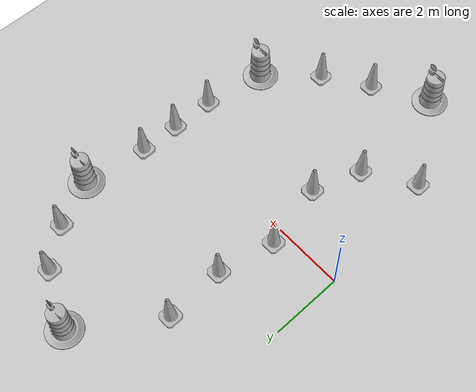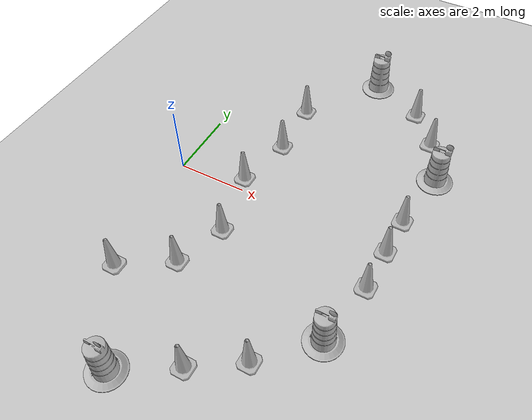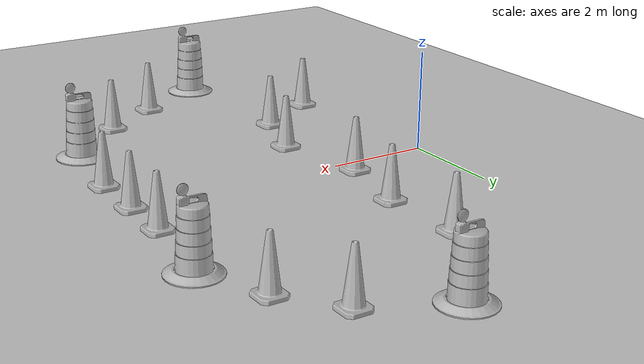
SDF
<sdf version="1.7">
 <world name="default">
  <light name="sun" type="directional">
   <pose>0 0 10 0 -0 0</pose>
   <diffuse>0.8 0.8 0.8 1</diffuse>
   <specular>0.2 0.2 0.2 1</specular>
   <attenuation>
    <range>1000</range>
    <constant>0.9</constant>
    <linear>0.01</linear>
    <quadratic>0.001</quadratic>
   </attenuation>
   <direction>-0.5 0.1 -0.9</direction>
   <spot><inner_angle>0</inner_angle><outer_angle>0</outer_angle><falloff>0</falloff></spot>
  </light>
  <model name="ground_plane">
   <static>1</static>
   <link name="link">
    <collision name="collision">
     <geometry><plane><normal>0 0 1</normal><size>100 100</size></plane></geometry>
     <surface>
      <contact><collide_bitmask>65535</collide_bitmask></contact>
      <friction><ode><mu>100</mu><mu2>50</mu2></ode></friction>
     </surface>
    </collision>
    <visual name="visual">
     <cast_shadows>0</cast_shadows>
     <geometry><plane><normal>0 0 1</normal><size>100 100</size></plane></geometry>
     <material>
      <script><uri>file://media/materials/scripts/gazebo.material</uri><name>Gazebo/Grey</name></script>
     </material>
    </visual>
   </link>
  </model>
  <gravity>0 0 -9.8</gravity>
  <magnetic_field>6e-06 2.3e-05 -4.2e-05</magnetic_field>
  <atmosphere type="adiabatic"/>
  <physics type="ode">
   <max_step_size>0.001</max_step_size>
   <real_time_factor>1</real_time_factor>
   <real_time_update_rate>1000</real_time_update_rate>
  </physics>
  <scene><ambient>0.4 0.4 0.4 1</ambient><background>0.7 0.7 0.7 1</background><shadows>1</shadows></scene>
  <audio><device>default</device></audio>
  <spherical_coordinates>
   <surface_model>EARTH_WGS84</surface_model>
   <latitude_deg>0</latitude_deg>
   <longitude_deg>0</longitude_deg>
   <elevation>0</elevation>
   <heading_deg>0</heading_deg>
  </spherical_coordinates>
  <model name="Construction Barrel">
   <link name="link">
    <inertial>
     <pose>0 0 0.4 0 -0 0</pose>
     <mass>500</mass>
     <inertia><ixx>51.2096</ixx><iyy>51.2096</iyy><izz>25</izz><ixy>0</ixy><ixz>0</ixz><iyz>0</iyz></inertia>
    </inertial>
    <collision name="collision">
     <geometry><mesh><uri>model://construction_barrel/meshes/construction_barrel.dae</uri></mesh></geometry>
    </collision>
    <visual name="visual">
     <geometry><mesh><uri>model://construction_barrel/meshes/construction_barrel.dae</uri></mesh></geometry>
    </visual>
   </link>
   <pose>3.65618 5.83042 -0 1e-06 -1e-06 -2.7e-05</pose>
  </model>
  <model name="Construction Barrel_0">
   <link name="link">
    <inertial>
     <pose>0 0 0.4 0 -0 0</pose>
     <mass>500</mass>
     <inertia><ixx>51.2096</ixx><iyy>51.2096</iyy><izz>25</izz><ixy>0</ixy><ixz>0</ixz><iyz>0</iyz></inertia>
    </inertial>
    <collision name="collision">
     <geometry><mesh><uri>model://construction_barrel/meshes/construction_barrel.dae</uri></mesh></geometry>
    </collision>
    <visual name="visual">
     <geometry><mesh><uri>model://construction_barrel/meshes/construction_barrel.dae</uri></mesh></geometry>
    </visual>
   </link>
   <pose>6.62296 2.84429 -0 1e-06 -1e-06 -2.6e-05</pose>
  </model>
  <model name="Construction Barrel_1">
   <link name="link">
    <inertial>
     <pose>0 0 0.4 0 -0 0</pose>
     <mass>500</mass>
     <inertia><ixx>51.2096</ixx><iyy>51.2096</iyy><izz>25</izz><ixy>0</ixy><ixz>0</ixz><iyz>0</iyz></inertia>
    </inertial>
    <collision name="collision">
     <geometry><mesh><uri>model://construction_barrel/meshes/construction_barrel.dae</uri></mesh></geometry>
    </collision>
    <visual name="visual">
     <geometry><mesh><uri>model://construction_barrel/meshes/construction_barrel.dae</uri></mesh></geometry>
    </visual>
   </link>
   <pose>2.04222 -5.9456 -0 1e-06 -1e-06 -2.5e-05</pose>
  </model>
  <model name="Construction Cone">
   <link name="link">
    <collision name="collision">
     <geometry>
      <mesh><scale>10 10 10</scale><uri>model://construction_cone/meshes/construction_cone.dae</uri></mesh>
     </geometry>
    </collision>
    <visual name="visual">
     <geometry>
      <mesh><scale>10 10 10</scale><uri>model://construction_cone/meshes/construction_cone.dae</uri></mesh>
     </geometry>
    </visual>
    <inertial>
     <inertia><ixx>1</ixx><ixy>0</ixy><ixz>0</ixz><iyy>1</iyy><iyz>0</iyz><izz>1</izz></inertia>
     <mass>1</mass>
    </inertial>
   </link>
   <pose>6.35152 1.03871 -0 0 -1e-06 0</pose>
  </model>
  <model name="Construction Barrel_2">
   <link name="link">
    <inertial>
     <pose>0 0 0.4 0 -0 0</pose>
     <mass>500</mass>
     <inertia><ixx>51.2096</ixx><iyy>51.2096</iyy><izz>25</izz><ixy>0</ixy><ixz>0</ixz><iyz>0</iyz></inertia>
    </inertial>
    <collision name="collision">
     <geometry><mesh><uri>model://construction_barrel/meshes/construction_barrel.dae</uri></mesh></geometry>
    </collision>
    <visual name="visual">
     <geometry><mesh><uri>model://construction_barrel/meshes/construction_barrel.dae</uri></mesh></geometry>
    </visual>
   </link>
   <pose>5.99773 -3.03415 -0 1e-06 -1e-06 -2.2e-05</pose>
  </model>
  <model name="Construction Cone_0">
   <link name="link">
    <collision name="collision">
     <geometry>
      <mesh><scale>10 10 10</scale><uri>model://construction_cone/meshes/construction_cone.dae</uri></mesh>
     </geometry>
    </collision>
    <visual name="visual">
     <geometry>
      <mesh><scale>10 10 10</scale><uri>model://construction_cone/meshes/construction_cone.dae</uri></mesh>
     </geometry>
    </visual>
    <inertial>
     <inertia><ixx>1</ixx><ixy>0</ixy><ixz>0</ixz><iyy>1</iyy><iyz>0</iyz><izz>1</izz></inertia>
     <mass>1</mass>
    </inertial>
   </link>
   <pose>6.32528 -0.080982 -0 0 -1e-06 0</pose>
  </model>
  <model name="Construction Cone_1">
   <link name="link">
    <collision name="collision">
     <geometry>
      <mesh><scale>10 10 10</scale><uri>model://construction_cone/meshes/construction_cone.dae</uri></mesh>
     </geometry>
    </collision>
    <visual name="visual">
     <geometry>
      <mesh><scale>10 10 10</scale><uri>model://construction_cone/meshes/construction_cone.dae</uri></mesh>
     </geometry>
    </visual>
    <inertial>
     <inertia><ixx>1</ixx><ixy>0</ixy><ixz>0</ixz><iyy>1</iyy><iyz>0</iyz><izz>1</izz></inertia>
     <mass>1</mass>
    </inertial>
   </link>
   <pose>6.30311 -1.2916 -0 0 -1e-06 0</pose>
  </model>
  <model name="Construction Cone_2">
   <link name="link">
    <collision name="collision">
     <geometry>
      <mesh><scale>10 10 10</scale><uri>model://construction_cone/meshes/construction_cone.dae</uri></mesh>
     </geometry>
    </collision>
    <visual name="visual">
     <geometry>
      <mesh><scale>10 10 10</scale><uri>model://construction_cone/meshes/construction_cone.dae</uri></mesh>
     </geometry>
    </visual>
    <inertial>
     <inertia><ixx>1</ixx><ixy>0</ixy><ixz>0</ixz><iyy>1</iyy><iyz>0</iyz><izz>1</izz></inertia>
     <mass>1</mass>
    </inertial>
   </link>
   <pose>6.02724 4.12234 0 -0 -0 -0</pose>
  </model>
  <model name="Construction Cone_3">
   <link name="link">
    <collision name="collision">
     <geometry>
      <mesh><scale>10 10 10</scale><uri>model://construction_cone/meshes/construction_cone.dae</uri></mesh>
     </geometry>
    </collision>
    <visual name="visual">
     <geometry>
      <mesh><scale>10 10 10</scale><uri>model://construction_cone/meshes/construction_cone.dae</uri></mesh>
     </geometry>
    </visual>
    <inertial>
     <inertia><ixx>1</ixx><ixy>0</ixy><ixz>0</ixz><iyy>1</iyy><iyz>0</iyz><izz>1</izz></inertia>
     <mass>1</mass>
    </inertial>
   </link>
   <pose>5.20441 5.12618 -0 0 -1e-06 0</pose>
  </model>
  <model name="Construction Cone_4">
   <link name="link">
    <collision name="collision">
     <geometry>
      <mesh><scale>10 10 10</scale><uri>model://construction_cone/meshes/construction_cone.dae</uri></mesh>
     </geometry>
    </collision>
    <visual name="visual">
     <geometry>
      <mesh><scale>10 10 10</scale><uri>model://construction_cone/meshes/construction_cone.dae</uri></mesh>
     </geometry>
    </visual>
    <inertial>
     <inertia><ixx>1</ixx><ixy>0</ixy><ixz>0</ixz><iyy>1</iyy><iyz>0</iyz><izz>1</izz></inertia>
     <mass>1</mass>
    </inertial>
   </link>
   <pose>4.76155 -4.28789 -1e-05 -1e-06 0 0</pose>
  </model>
  <model name="Construction Cone_5">
   <link name="link">
    <collision name="collision">
     <geometry>
      <mesh><scale>10 10 10</scale><uri>model://construction_cone/meshes/construction_cone.dae</uri></mesh>
     </geometry>
    </collision>
    <visual name="visual">
     <geometry>
      <mesh><scale>10 10 10</scale><uri>model://construction_cone/meshes/construction_cone.dae</uri></mesh>
     </geometry>
    </visual>
    <inertial>
     <inertia><ixx>1</ixx><ixy>0</ixy><ixz>0</ixz><iyy>1</iyy><iyz>0</iyz><izz>1</izz></inertia>
     <mass>1</mass>
    </inertial>
   </link>
   <pose>3.52597 -5.08808 -0 0 -0 0</pose>
  </model>
  <model name="Construction Cone_6">
   <link name="link">
    <collision name="collision">
     <geometry>
      <mesh><scale>10 10 10</scale><uri>model://construction_cone/meshes/construction_cone.dae</uri></mesh>
     </geometry>
    </collision>
    <visual name="visual">
     <geometry>
      <mesh><scale>10 10 10</scale><uri>model://construction_cone/meshes/construction_cone.dae</uri></mesh>
     </geometry>
    </visual>
    <inertial>
     <inertia><ixx>1</ixx><ixy>0</ixy><ixz>0</ixz><iyy>1</iyy><iyz>0</iyz><izz>1</izz></inertia>
     <mass>1</mass>
    </inertial>
   </link>
   <pose>1.76873 -2.8213 -0 0 -1e-06 0</pose>
  </model>
  <model name="Construction Cone_7">
   <link name="link">
    <collision name="collision">
     <geometry>
      <mesh><scale>10 10 10</scale><uri>model://construction_cone/meshes/construction_cone.dae</uri></mesh>
     </geometry>
    </collision>
    <visual name="visual">
     <geometry>
      <mesh><scale>10 10 10</scale><uri>model://construction_cone/meshes/construction_cone.dae</uri></mesh>
     </geometry>
    </visual>
    <inertial>
     <inertia><ixx>1</ixx><ixy>0</ixy><ixz>0</ixz><iyy>1</iyy><iyz>0</iyz><izz>1</izz></inertia>
     <mass>1</mass>
    </inertial>
   </link>
   <pose>2.24693 -1.44121 -0 1e-06 -0 0</pose>
  </model>
  <model name="Construction Cone_8">
   <link name="link">
    <collision name="collision">
     <geometry>
      <mesh><scale>10 10 10</scale><uri>model://construction_cone/meshes/construction_cone.dae</uri></mesh>
     </geometry>
    </collision>
    <visual name="visual">
     <geometry>
      <mesh><scale>10 10 10</scale><uri>model://construction_cone/meshes/construction_cone.dae</uri></mesh>
     </geometry>
    </visual>
    <inertial>
     <inertia><ixx>1</ixx><ixy>0</ixy><ixz>0</ixz><iyy>1</iyy><iyz>0</iyz><izz>1</izz></inertia>
     <mass>1</mass>
    </inertial>
   </link>
   <pose>2.12262 3.6767 -0 -0 -0 -0</pose>
  </model>
  <model name="Construction Cone_9">
   <link name="link">
    <collision name="collision">
     <geometry>
      <mesh><scale>10 10 10</scale><uri>model://construction_cone/meshes/construction_cone.dae</uri></mesh>
     </geometry>
    </collision>
    <visual name="visual">
     <geometry>
      <mesh><scale>10 10 10</scale><uri>model://construction_cone/meshes/construction_cone.dae</uri></mesh>
     </geometry>
    </visual>
    <inertial>
     <inertia><ixx>1</ixx><ixy>0</ixy><ixz>0</ixz><iyy>1</iyy><iyz>0</iyz><izz>1</izz></inertia>
     <mass>1</mass>
    </inertial>
   </link>
   <pose>1.83808 0.394244 -0 0 -1e-06 0</pose>
  </model>
  <model name="Construction Cone_10">
   <link name="link">
    <collision name="collision">
     <geometry>
      <mesh><scale>10 10 10</scale><uri>model://construction_cone/meshes/construction_cone.dae</uri></mesh>
     </geometry>
    </collision>
    <visual name="visual">
     <geometry>
      <mesh><scale>10 10 10</scale><uri>model://construction_cone/meshes/construction_cone.dae</uri></mesh>
     </geometry>
    </visual>
    <inertial>
     <inertia><ixx>1</ixx><ixy>0</ixy><ixz>0</ixz><iyy>1</iyy><iyz>0</iyz><izz>1</izz></inertia>
     <mass>1</mass>
    </inertial>
   </link>
   <pose>2.19107 1.99619 0 -0 -0 -0</pose>
  </model>
  <model name="Construction Cone_11">
   <link name="link">
    <collision name="collision">
     <geometry>
      <mesh><scale>10 10 10</scale><uri>model://construction_cone/meshes/construction_cone.dae</uri></mesh>
     </geometry>
    </collision>
    <visual name="visual">
     <geometry>
      <mesh><scale>10 10 10</scale><uri>model://construction_cone/meshes/construction_cone.dae</uri></mesh>
     </geometry>
    </visual>
    <inertial>
     <inertia><ixx>1</ixx><ixy>0</ixy><ixz>0</ixz><iyy>1</iyy><iyz>0</iyz><izz>1</izz></inertia>
     <mass>1</mass>
    </inertial>
   </link>
   <pose>0.420964 -3.64893 -0 0 -1e-06 0</pose>
  </model>
 </world>
</sdf>
